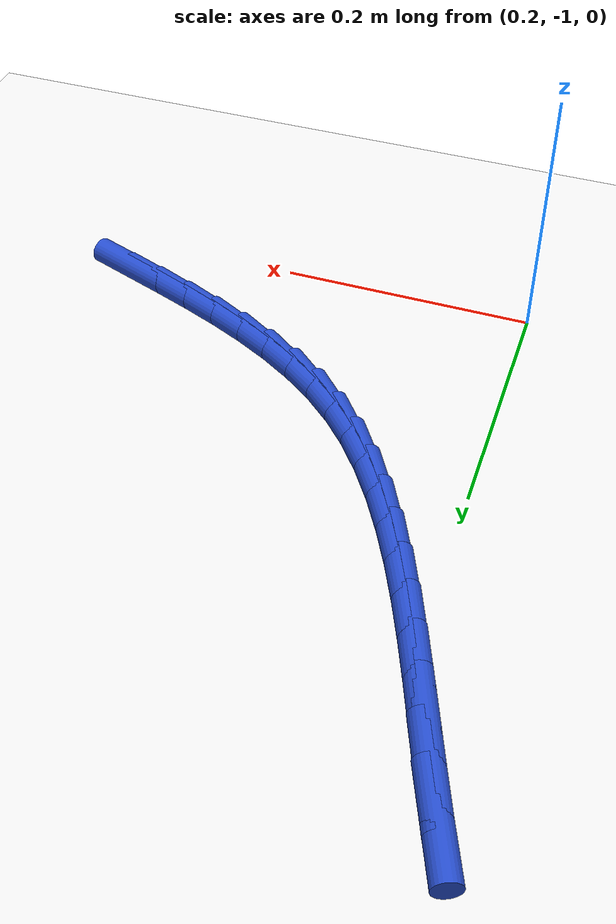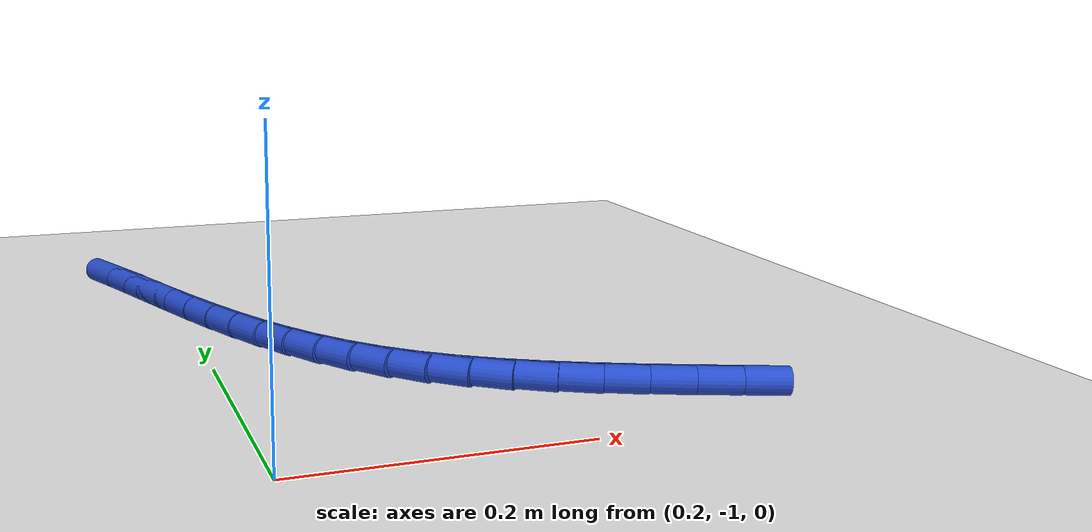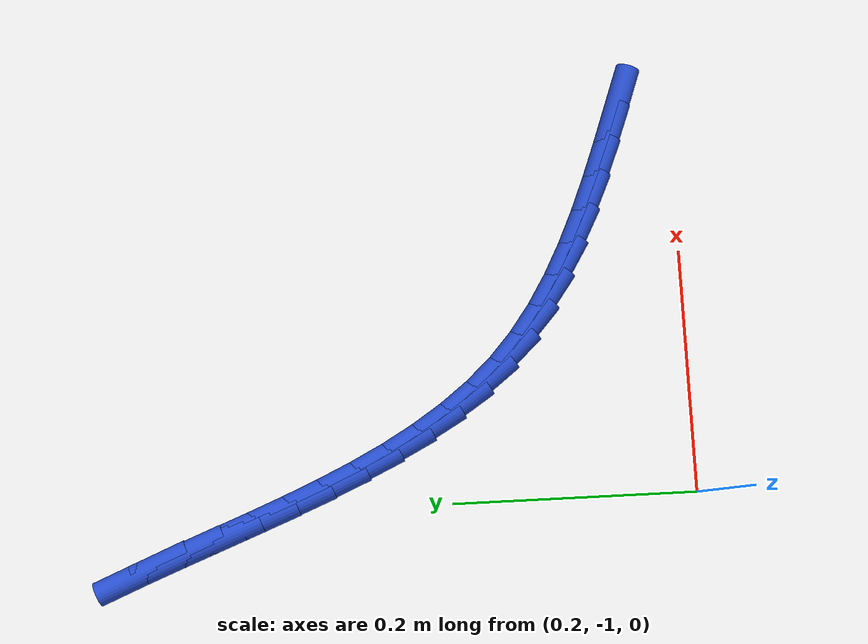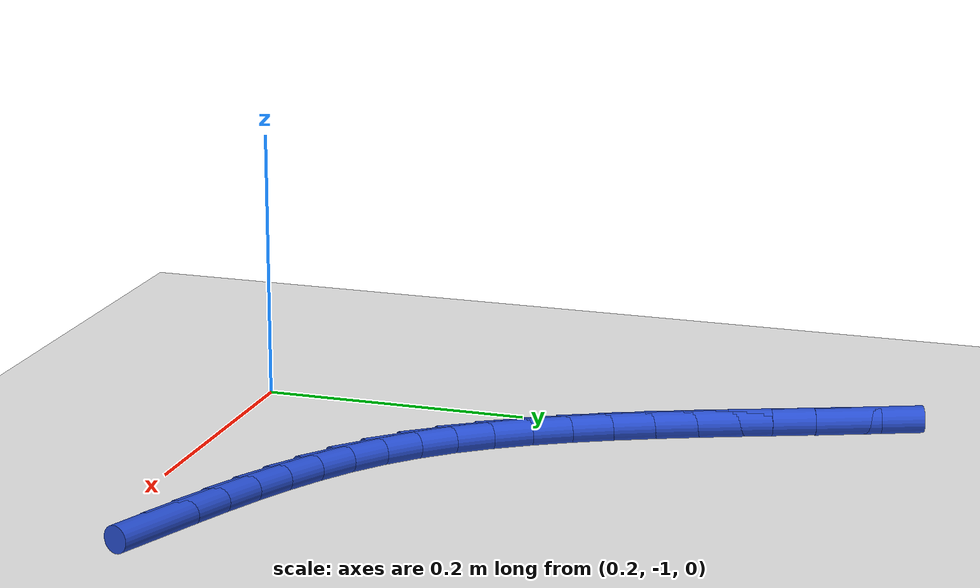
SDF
<sdf version="1.6">
 <world name="default">
  <model name="ground_plane">
   <static>1</static>
   <link name="link">
    <collision name="collision">
     <geometry><plane><normal>0 0 1</normal><size>100 100</size></plane></geometry>
     <surface><friction><ode><mu>100</mu><mu2>50</mu2></ode></friction></surface>
    </collision>
    <visual name="visual">
     <cast_shadows>0</cast_shadows>
     <geometry><plane><normal>0 0 1</normal><size>100 100</size></plane></geometry>
     <material>
      <script><uri>file://media/materials/scripts/gazebo.material</uri><name>Gazebo/WhiteGlow</name></script>
     </material>
    </visual>
   </link>
  </model>
  <model name="line">
   <link name="link_192">
    <pose>0.518637265508785 -0.9535865599282323 0.01 0 1.57 -0.3476845338783963</pose>
    <collision name="collision">
     <geometry><cylinder><radius>0.01</radius><length>0.08</length></cylinder></geometry>
    </collision>
    <visual name="visual">
     <material>
      <script><name>Gazebo/Blue</name><uri>file://media/materials/scripts/gazebo.material</uri></script>
     </material>
     <geometry><cylinder><radius>0.01</radius><length>0.08</length></cylinder></geometry>
    </visual>
   </link>
   <link name="link_193">
    <pose>0.4893965696613473 -0.9429895354357287 0.01 0 1.57 -0.36350292852047983</pose>
    <collision name="collision">
     <geometry><cylinder><radius>0.01</radius><length>0.08</length></cylinder></geometry>
    </collision>
    <visual name="visual">
     <material>
      <script><name>Gazebo/Blue</name><uri>file://media/materials/scripts/gazebo.material</uri></script>
     </material>
     <geometry><cylinder><radius>0.01</radius><length>0.08</length></cylinder></geometry>
    </visual>
   </link>
   <link name="link_194">
    <pose>0.4606192251052176 -0.932042421525611 0.01 0 1.57 -0.3909261520116123</pose>
    <collision name="collision">
     <geometry><cylinder><radius>0.01</radius><length>0.08</length></cylinder></geometry>
    </collision>
    <visual name="visual">
     <material>
      <script><name>Gazebo/Blue</name><uri>file://media/materials/scripts/gazebo.material</uri></script>
     </material>
     <geometry><cylinder><radius>0.01</radius><length>0.08</length></cylinder></geometry>
    </visual>
   </link>
   <link name="link_195">
    <pose>0.4325342983227341 -0.9204675568665522 0.01 0 1.57 -0.43068570600262857</pose>
    <collision name="collision">
     <geometry><cylinder><radius>0.01</radius><length>0.08</length></cylinder></geometry>
    </collision>
    <visual name="visual">
     <material>
      <script><name>Gazebo/Blue</name><uri>file://media/materials/scripts/gazebo.material</uri></script>
     </material>
     <geometry><cylinder><radius>0.01</radius><length>0.08</length></cylinder></geometry>
    </visual>
   </link>
   <link name="link_196">
    <pose>0.40537085579623594 -0.9079872801272275 0.01 0 1.57 -0.4836453361711477</pose>
    <collision name="collision">
     <geometry><cylinder><radius>0.01</radius><length>0.08</length></cylinder></geometry>
    </collision>
    <visual name="visual">
     <material>
      <script><name>Gazebo/Blue</name><uri>file://media/materials/scripts/gazebo.material</uri></script>
     </material>
     <geometry><cylinder><radius>0.01</radius><length>0.08</length></cylinder></geometry>
    </visual>
   </link>
   <link name="link_197">
    <pose>0.37935796400806115 -0.8943239299763102 0.01 0 1.57 -0.5506280858074809</pose>
    <collision name="collision">
     <geometry><cylinder><radius>0.01</radius><length>0.08</length></cylinder></geometry>
    </collision>
    <visual name="visual">
     <material>
      <script><name>Gazebo/Blue</name><uri>file://media/materials/scripts/gazebo.material</uri></script>
     </material>
     <geometry><cylinder><radius>0.01</radius><length>0.08</length></cylinder></geometry>
    </visual>
   </link>
   <link name="link_198">
    <pose>0.35472468944054947 -0.8791998450824745 0.01 0 1.57 -0.6321210096631387</pose>
    <collision name="collision">
     <geometry><cylinder><radius>0.01</radius><length>0.08</length></cylinder></geometry>
    </collision>
    <visual name="visual">
     <material>
      <script><name>Gazebo/Blue</name><uri>file://media/materials/scripts/gazebo.material</uri></script>
     </material>
     <geometry><cylinder><radius>0.01</radius><length>0.08</length></cylinder></geometry>
    </visual>
   </link>
   <link name="link_199">
    <pose>0.3317000985760391 -0.8623373641143948 0.01 0 1.57 -0.7275934507430689</pose>
    <collision name="collision">
     <geometry><cylinder><radius>0.01</radius><length>0.08</length></cylinder></geometry>
    </collision>
    <visual name="visual">
     <material>
      <script><name>Gazebo/Blue</name><uri>file://media/materials/scripts/gazebo.material</uri></script>
     </material>
     <geometry><cylinder><radius>0.01</radius><length>0.08</length></cylinder></geometry>
    </visual>
   </link>
   <link name="link_200">
    <pose>0.31050854526372784 -0.8434643164636505 0.01 0 1.57 -0.8258937363818588</pose>
    <collision name="collision">
     <geometry><cylinder><radius>0.01</radius><length>0.08</length></cylinder></geometry>
    </collision>
    <visual name="visual">
     <material>
      <script><name>Gazebo/Blue</name><uri>file://media/materials/scripts/gazebo.material</uri></script>
     </material>
     <geometry><cylinder><radius>0.01</radius><length>0.08</length></cylinder></geometry>
    </visual>
   </link>
   <link name="link_201">
    <pose>0.29119408176250045 -0.8225186022067753 0.01 0 1.57 -0.9128987391758268</pose>
    <collision name="collision">
     <geometry><cylinder><radius>0.01</radius><length>0.08</length></cylinder></geometry>
    </collision>
    <visual name="visual">
     <material>
      <script><name>Gazebo/Blue</name><uri>file://media/materials/scripts/gazebo.material</uri></script>
     </material>
     <geometry><cylinder><radius>0.01</radius><length>0.08</length></cylinder></geometry>
    </visual>
   </link>
   <link name="link_202">
    <pose>0.2735682073600164 -0.7997090705665064 0.01 0 1.57 -0.98724055471665</pose>
    <collision name="collision">
     <geometry><cylinder><radius>0.01</radius><length>0.08</length></cylinder></geometry>
    </collision>
    <visual name="visual">
     <material>
      <script><name>Gazebo/Blue</name><uri>file://media/materials/scripts/gazebo.material</uri></script>
     </material>
     <geometry><cylinder><radius>0.01</radius><length>0.08</length></cylinder></geometry>
    </visual>
   </link>
   <link name="link_203">
    <pose>0.25742704581466724 -0.7752624849057639 0.01 0 1.57 -1.049176541683859</pose>
    <collision name="collision">
     <geometry><cylinder><radius>0.01</radius><length>0.08</length></cylinder></geometry>
    </collision>
    <visual name="visual">
     <material>
      <script><name>Gazebo/Blue</name><uri>file://media/materials/scripts/gazebo.material</uri></script>
     </material>
     <geometry><cylinder><radius>0.01</radius><length>0.08</length></cylinder></geometry>
    </visual>
   </link>
   <link name="link_204">
    <pose>0.24256672088484488 -0.749405608587469 0.01 0 1.57 -1.099393300866288</pose>
    <collision name="collision">
     <geometry><cylinder><radius>0.01</radius><length>0.08</length></cylinder></geometry>
    </collision>
    <visual name="visual">
     <material>
      <script><name>Gazebo/Blue</name><uri>file://media/materials/scripts/gazebo.material</uri></script>
     </material>
     <geometry><cylinder><radius>0.01</radius><length>0.08</length></cylinder></geometry>
    </visual>
   </link>
   <link name="link_205">
    <pose>0.22878335632894128 -0.7223652049745424 0.01 0 1.57 -1.1387269095016959</pose>
    <collision name="collision">
     <geometry><cylinder><radius>0.01</radius><length>0.08</length></cylinder></geometry>
    </collision>
    <visual name="visual">
     <material>
      <script><name>Gazebo/Blue</name><uri>file://media/materials/scripts/gazebo.material</uri></script>
     </material>
     <geometry><cylinder><radius>0.01</radius><length>0.08</length></cylinder></geometry>
    </visual>
   </link>
   <link name="link_206">
    <pose>0.21587307590534824 -0.6943680374299052 0.01 0 1.57 -1.1679817822092988</pose>
    <collision name="collision">
     <geometry><cylinder><radius>0.01</radius><length>0.08</length></cylinder></geometry>
    </collision>
    <visual name="visual">
     <material>
      <script><name>Gazebo/Blue</name><uri>file://media/materials/scripts/gazebo.material</uri></script>
     </material>
     <geometry><cylinder><radius>0.01</radius><length>0.08</length></cylinder></geometry>
    </visual>
   </link>
   <link name="link_207">
    <pose>0.20363200337245832 -0.6656408693164788 0.01 0 1.57 -1.1878274611946222</pose>
    <collision name="collision">
     <geometry><cylinder><radius>0.01</radius><length>0.08</length></cylinder></geometry>
    </collision>
    <visual name="visual">
     <material>
      <script><name>Gazebo/Blue</name><uri>file://media/materials/scripts/gazebo.material</uri></script>
     </material>
     <geometry><cylinder><radius>0.01</radius><length>0.08</length></cylinder></geometry>
    </visual>
   </link>
   <link name="link_208">
    <pose>0.19185626248866336 -0.6364104639971846 0.01 0 1.57 -1.1987460441790623</pose>
    <collision name="collision">
     <geometry><cylinder><radius>0.01</radius><length>0.08</length></cylinder></geometry>
    </collision>
    <visual name="visual">
     <material>
      <script><name>Gazebo/Blue</name><uri>file://media/materials/scripts/gazebo.material</uri></script>
     </material>
     <geometry><cylinder><radius>0.01</radius><length>0.08</length></cylinder></geometry>
    </visual>
   </link>
   <link name="link_209">
    <pose>0.18034197701235516 -0.606903584834943 0.01 0 1.57 -1.2010082664539645</pose>
    <collision name="collision">
     <geometry><cylinder><radius>0.01</radius><length>0.08</length></cylinder></geometry>
    </collision>
    <visual name="visual">
     <material>
      <script><name>Gazebo/Blue</name><uri>file://media/materials/scripts/gazebo.material</uri></script>
     </material>
     <geometry><cylinder><radius>0.01</radius><length>0.08</length></cylinder></geometry>
    </visual>
   </link>
   <link name="link_210">
    <pose>0.1688852707019256 -0.5773469951926746 0.01 0 1.57 -1.1946640572645484</pose>
    <collision name="collision">
     <geometry><cylinder><radius>0.01</radius><length>0.08</length></cylinder></geometry>
    </collision>
    <visual name="visual">
     <material>
      <script><name>Gazebo/Blue</name><uri>file://media/materials/scripts/gazebo.material</uri></script>
     </material>
     <geometry><cylinder><radius>0.01</radius><length>0.08</length></cylinder></geometry>
    </visual>
   </link>
   <link name="link_211">
    <pose>0.1572822673157671 -0.5479674584333017 0.01 0 1.57 -1.17954036239853</pose>
    <collision name="collision">
     <geometry><cylinder><radius>0.01</radius><length>0.08</length></cylinder></geometry>
    </collision>
    <visual name="visual">
     <material>
      <script><name>Gazebo/Blue</name><uri>file://media/materials/scripts/gazebo.material</uri></script>
     </material>
     <geometry><cylinder><radius>0.01</radius><length>0.08</length></cylinder></geometry>
    </visual>
   </link>
  </model>
 </world>
</sdf>
